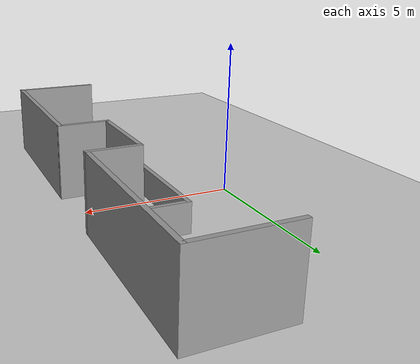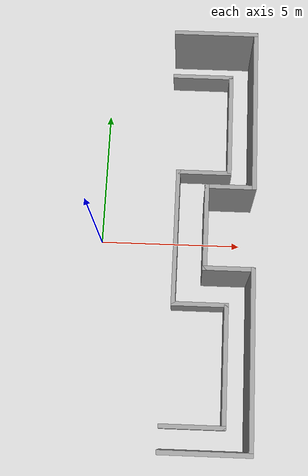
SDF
<sdf version="1.7">
 <world name="default">
  <light name="sun" type="directional">
   <pose>0 0 10 0 -0 0</pose>
   <diffuse>0.8 0.8 0.8 1</diffuse>
   <specular>0.2 0.2 0.2 1</specular>
   <attenuation>
    <range>1000</range>
    <constant>0.9</constant>
    <linear>0.01</linear>
    <quadratic>0.001</quadratic>
   </attenuation>
   <direction>-0.5 0.1 -0.9</direction>
   <spot><inner_angle>0</inner_angle><outer_angle>0</outer_angle><falloff>0</falloff></spot>
  </light>
  <model name="ground_plane">
   <static>1</static>
   <link name="link">
    <collision name="collision">
     <geometry><plane><normal>0 0 1</normal><size>100 100</size></plane></geometry>
     <surface><friction><ode><mu>100</mu><mu2>50</mu2></ode></friction></surface>
    </collision>
    <visual name="visual">
     <cast_shadows>0</cast_shadows>
     <geometry><plane><normal>0 0 1</normal><size>100 100</size></plane></geometry>
     <material>
      <script><uri>file://media/materials/scripts/gazebo.material</uri><name>Gazebo/Grey</name></script>
     </material>
    </visual>
   </link>
  </model>
  <gravity>0 0 -9.8</gravity>
  <magnetic_field>6e-06 2.3e-05 -4.2e-05</magnetic_field>
  <atmosphere type="adiabatic"/>
  <physics type="ode">
   <max_step_size>0.001</max_step_size>
   <real_time_factor>1</real_time_factor>
   <real_time_update_rate>1000</real_time_update_rate>
  </physics>
  <scene><ambient>0.4 0.4 0.4 1</ambient><background>0.7 0.7 0.7 1</background><shadows>1</shadows></scene>
  <audio><device>default</device></audio>
  <spherical_coordinates>
   <surface_model>EARTH_WGS84</surface_model>
   <latitude_deg>0</latitude_deg>
   <longitude_deg>0</longitude_deg>
   <elevation>0</elevation>
   <heading_deg>0</heading_deg>
  </spherical_coordinates>
  <model name="mbs_room">
   <link name="Wall_100">
    <pose>0 -0.735966 0 0 -0 0</pose>
    <visual name="Wall_100_Visual">
     <pose>0 0 1.25 0 -0 0</pose>
     <geometry><box><size>3 0.15 2.5</size></box></geometry>
     <material>
      <script><uri>file://media/materials/scripts/gazebo.material</uri><name>Gazebo/Grey</name></script>
      <ambient>1 1 1 1</ambient>
      <shader type="pixel"/>
     </material>
     <meta><layer>0</layer></meta>
    </visual>
    <collision name="Wall_100_Collision">
     <pose>0 0 1.25 0 -0 0</pose>
     <geometry><box><size>3 0.15 2.5</size></box></geometry>
     <surface>
      <friction>
       <ode><mu>1</mu><mu2>1</mu2><fdir1>0 0 0</fdir1><slip1>0</slip1><slip2>0</slip2></ode>
       <torsional>
        <coefficient>1</coefficient>
        <patch_radius>0</patch_radius>
        <surface_radius>0</surface_radius>
        <use_patch_radius>1</use_patch_radius>
        <ode><slip>0</slip></ode>
       </torsional>
      </friction>
      <bounce><restitution_coefficient>0</restitution_coefficient><threshold>1e+06</threshold></bounce>
      <contact>
       <collide_without_contact>0</collide_without_contact>
       <collide_without_contact_bitmask>1</collide_without_contact_bitmask>
       <collide_bitmask>1</collide_bitmask>
       <ode>
        <soft_cfm>0</soft_cfm>
        <soft_erp>0.2</soft_erp>
        <kp>1e+13</kp>
        <kd>1</kd>
        <max_vel>0.01</max_vel>
        <min_depth>0</min_depth>
       </ode>
       <bullet>
        <split_impulse>1</split_impulse>
        <split_impulse_penetration_threshold>-0.01</split_impulse_penetration_threshold>
        <soft_cfm>0</soft_cfm>
        <soft_erp>0.2</soft_erp>
        <kp>1e+13</kp>
        <kd>1</kd>
       </bullet>
      </contact>
     </surface>
    </collision>
   </link>
   <link name="Wall_101">
    <pose>1.425 -1.53597 0 0 0 -1.5708</pose>
    <visual name="Wall_101_Visual">
     <pose>0 0 1.25 0 -0 0</pose>
     <geometry><box><size>1.75 0.15 2.5</size></box></geometry>
     <material>
      <script><uri>file://media/materials/scripts/gazebo.material</uri><name>Gazebo/Grey</name></script>
      <ambient>1 1 1 1</ambient>
      <shader type="pixel"/>
     </material>
     <meta><layer>0</layer></meta>
    </visual>
    <collision name="Wall_101_Collision">
     <pose>0 0 1.25 0 -0 0</pose>
     <geometry><box><size>1.75 0.15 2.5</size></box></geometry>
     <surface>
      <friction>
       <ode><mu>1</mu><mu2>1</mu2><fdir1>0 0 0</fdir1><slip1>0</slip1><slip2>0</slip2></ode>
       <torsional>
        <coefficient>1</coefficient>
        <patch_radius>0</patch_radius>
        <surface_radius>0</surface_radius>
        <use_patch_radius>1</use_patch_radius>
        <ode><slip>0</slip></ode>
       </torsional>
      </friction>
      <bounce><restitution_coefficient>0</restitution_coefficient><threshold>1e+06</threshold></bounce>
      <contact>
       <collide_without_contact>0</collide_without_contact>
       <collide_without_contact_bitmask>1</collide_without_contact_bitmask>
       <collide_bitmask>1</collide_bitmask>
       <ode>
        <soft_cfm>0</soft_cfm>
        <soft_erp>0.2</soft_erp>
        <kp>1e+13</kp>
        <kd>1</kd>
        <max_vel>0.01</max_vel>
        <min_depth>0</min_depth>
       </ode>
       <bullet>
        <split_impulse>1</split_impulse>
        <split_impulse_penetration_threshold>-0.01</split_impulse_penetration_threshold>
        <soft_cfm>0</soft_cfm>
        <soft_erp>0.2</soft_erp>
        <kp>1e+13</kp>
        <kd>1</kd>
       </bullet>
      </contact>
     </surface>
    </collision>
   </link>
   <link name="Wall_102">
    <pose>4.35 -2.33597 0 0 -0 0</pose>
    <visual name="Wall_102_Visual">
     <pose>0 0 1.25 0 -0 0</pose>
     <geometry><box><size>6 0.15 2.5</size></box></geometry>
     <material>
      <script><uri>file://media/materials/scripts/gazebo.material</uri><name>Gazebo/Grey</name></script>
      <ambient>1 1 1 1</ambient>
      <shader type="pixel"/>
     </material>
     <meta><layer>0</layer></meta>
    </visual>
    <collision name="Wall_102_Collision">
     <pose>0 0 1.25 0 -0 0</pose>
     <geometry><box><size>6 0.15 2.5</size></box></geometry>
     <surface>
      <friction>
       <ode><mu>1</mu><mu2>1</mu2><fdir1>0 0 0</fdir1><slip1>0</slip1><slip2>0</slip2></ode>
       <torsional>
        <coefficient>1</coefficient>
        <patch_radius>0</patch_radius>
        <surface_radius>0</surface_radius>
        <use_patch_radius>1</use_patch_radius>
        <ode><slip>0</slip></ode>
       </torsional>
      </friction>
      <bounce><restitution_coefficient>0</restitution_coefficient><threshold>1e+06</threshold></bounce>
      <contact>
       <collide_without_contact>0</collide_without_contact>
       <collide_without_contact_bitmask>1</collide_without_contact_bitmask>
       <collide_bitmask>1</collide_bitmask>
       <ode>
        <soft_cfm>0</soft_cfm>
        <soft_erp>0.2</soft_erp>
        <kp>1e+13</kp>
        <kd>1</kd>
        <max_vel>0.01</max_vel>
        <min_depth>0</min_depth>
       </ode>
       <bullet>
        <split_impulse>1</split_impulse>
        <split_impulse_penetration_threshold>-0.01</split_impulse_penetration_threshold>
        <soft_cfm>0</soft_cfm>
        <soft_erp>0.2</soft_erp>
        <kp>1e+13</kp>
        <kd>1</kd>
       </bullet>
      </contact>
     </surface>
    </collision>
   </link>
   <link name="Wall_103">
    <pose>7.275 -0.910966 0 0 -0 1.5708</pose>
    <visual name="Wall_103_Visual">
     <pose>0 0 1.25 0 -0 0</pose>
     <geometry><box><size>3 0.15 2.5</size></box></geometry>
     <material>
      <script><uri>file://media/materials/scripts/gazebo.material</uri><name>Gazebo/Grey</name></script>
      <ambient>1 1 1 1</ambient>
      <shader type="pixel"/>
     </material>
     <meta><layer>0</layer></meta>
    </visual>
    <collision name="Wall_103_Collision">
     <pose>0 0 1.25 0 -0 0</pose>
     <geometry><box><size>3 0.15 2.5</size></box></geometry>
     <surface>
      <friction>
       <ode><mu>1</mu><mu2>1</mu2><fdir1>0 0 0</fdir1><slip1>0</slip1><slip2>0</slip2></ode>
       <torsional>
        <coefficient>1</coefficient>
        <patch_radius>0</patch_radius>
        <surface_radius>0</surface_radius>
        <use_patch_radius>1</use_patch_radius>
        <ode><slip>0</slip></ode>
       </torsional>
      </friction>
      <bounce><restitution_coefficient>0</restitution_coefficient><threshold>1e+06</threshold></bounce>
      <contact>
       <collide_without_contact>0</collide_without_contact>
       <collide_without_contact_bitmask>1</collide_without_contact_bitmask>
       <collide_bitmask>1</collide_bitmask>
       <ode>
        <soft_cfm>0</soft_cfm>
        <soft_erp>0.2</soft_erp>
        <kp>1e+13</kp>
        <kd>1</kd>
        <max_vel>0.01</max_vel>
        <min_depth>0</min_depth>
       </ode>
       <bullet>
        <split_impulse>1</split_impulse>
        <split_impulse_penetration_threshold>-0.01</split_impulse_penetration_threshold>
        <soft_cfm>0</soft_cfm>
        <soft_erp>0.2</soft_erp>
        <kp>1e+13</kp>
        <kd>1</kd>
       </bullet>
      </contact>
     </surface>
    </collision>
   </link>
   <link name="Wall_105">
    <pose>-6.465 -0.505966 0 0 0 -1.5708</pose>
    <inertial>
     <mass>1</mass>
     <inertia><ixx>1</ixx><ixy>0</ixy><ixz>0</ixz><iyy>1</iyy><iyz>0</iyz><izz>1</izz></inertia>
    </inertial>
    <visual name="Wall_105_Visual">
     <pose>0 0 0.5 0 -0 0</pose>
     <geometry><box><size>2.25 0.15 1</size></box></geometry>
     <material>
      <script><uri>file://media/materials/scripts/gazebo.material</uri><name>Gazebo/Grey</name></script>
      <ambient>1 1 1 1</ambient>
      <shader type="pixel"><normal_map>__default__</normal_map></shader>
      <diffuse>0.7 0.7 0.7 1</diffuse>
      <specular>0.01 0.01 0.01 1</specular>
      <emissive>0 0 0 1</emissive>
     </material>
     <meta><layer>0</layer></meta>
    </visual>
    <collision name="Wall_105_Collision">
     <pose>0 0 0.5 0 -0 0</pose>
     <geometry><box><size>2.25 0.15 1</size></box></geometry>
     <surface>
      <friction>
       <ode><mu>1</mu><mu2>1</mu2><fdir1>0 0 0</fdir1><slip1>0</slip1><slip2>0</slip2></ode>
       <torsional>
        <coefficient>1</coefficient>
        <patch_radius>0</patch_radius>
        <surface_radius>0</surface_radius>
        <use_patch_radius>1</use_patch_radius>
        <ode><slip>0</slip></ode>
       </torsional>
      </friction>
      <bounce><restitution_coefficient>0</restitution_coefficient><threshold>1e+06</threshold></bounce>
      <contact>
       <collide_without_contact>0</collide_without_contact>
       <collide_without_contact_bitmask>1</collide_without_contact_bitmask>
       <collide_bitmask>1</collide_bitmask>
       <ode>
        <soft_cfm>0</soft_cfm>
        <soft_erp>0.2</soft_erp>
        <kp>1e+13</kp>
        <kd>1</kd>
        <max_vel>0.01</max_vel>
        <min_depth>0</min_depth>
       </ode>
       <bullet>
        <split_impulse>1</split_impulse>
        <split_impulse_penetration_threshold>-0.01</split_impulse_penetration_threshold>
        <soft_cfm>0</soft_cfm>
        <soft_erp>0.2</soft_erp>
        <kp>1e+13</kp>
        <kd>1</kd>
       </bullet>
      </contact>
     </surface>
    </collision>
   </link>
   <link name="Wall_106">
    <pose>-4.415 -1.55597 0 0 -0 0</pose>
    <inertial>
     <mass>1</mass>
     <inertia><ixx>1</ixx><ixy>0</ixy><ixz>0</ixz><iyy>1</iyy><iyz>0</iyz><izz>1</izz></inertia>
    </inertial>
    <visual name="Wall_106_Visual">
     <pose>0 0 0.5 0 -0 0</pose>
     <geometry><box><size>4.25 0.15 1</size></box></geometry>
     <material>
      <script><uri>file://media/materials/scripts/gazebo.material</uri><name>Gazebo/Grey</name></script>
      <ambient>1 1 1 1</ambient>
      <shader type="pixel"><normal_map>__default__</normal_map></shader>
      <diffuse>0.7 0.7 0.7 1</diffuse>
      <specular>0.01 0.01 0.01 1</specular>
      <emissive>0 0 0 1</emissive>
     </material>
     <meta><layer>0</layer></meta>
    </visual>
    <collision name="Wall_106_Collision">
     <pose>0 0 0.5 0 -0 0</pose>
     <geometry><box><size>4.25 0.15 1</size></box></geometry>
     <surface>
      <friction>
       <ode><mu>1</mu><mu2>1</mu2><fdir1>0 0 0</fdir1><slip1>0</slip1><slip2>0</slip2></ode>
       <torsional>
        <coefficient>1</coefficient>
        <patch_radius>0</patch_radius>
        <surface_radius>0</surface_radius>
        <use_patch_radius>1</use_patch_radius>
        <ode><slip>0</slip></ode>
       </torsional>
      </friction>
      <bounce><restitution_coefficient>0</restitution_coefficient><threshold>1e+06</threshold></bounce>
      <contact>
       <collide_without_contact>0</collide_without_contact>
       <collide_without_contact_bitmask>1</collide_without_contact_bitmask>
       <collide_bitmask>1</collide_bitmask>
       <ode>
        <soft_cfm>0</soft_cfm>
        <soft_erp>0.2</soft_erp>
        <kp>1e+13</kp>
        <kd>1</kd>
        <max_vel>0.01</max_vel>
        <min_depth>0</min_depth>
       </ode>
       <bullet>
        <split_impulse>1</split_impulse>
        <split_impulse_penetration_threshold>-0.01</split_impulse_penetration_threshold>
        <soft_cfm>0</soft_cfm>
        <soft_erp>0.2</soft_erp>
        <kp>1e+13</kp>
        <kd>1</kd>
       </bullet>
      </contact>
     </surface>
    </collision>
   </link>
   <link name="Wall_107">
    <pose>-2.365 -0.630966 0 0 -0 1.5708</pose>
    <inertial>
     <mass>1</mass>
     <inertia><ixx>1</ixx><ixy>0</ixy><ixz>0</ixz><iyy>1</iyy><iyz>0</iyz><izz>1</izz></inertia>
    </inertial>
    <visual name="Wall_107_Visual">
     <pose>0 0 0.5 0 -0 0</pose>
     <geometry><box><size>2 0.15 1</size></box></geometry>
     <material>
      <script><uri>file://media/materials/scripts/gazebo.material</uri><name>Gazebo/Grey</name></script>
      <ambient>1 1 1 1</ambient>
      <shader type="pixel"><normal_map>__default__</normal_map></shader>
      <diffuse>0.7 0.7 0.7 1</diffuse>
      <specular>0.01 0.01 0.01 1</specular>
      <emissive>0 0 0 1</emissive>
     </material>
     <meta><layer>0</layer></meta>
    </visual>
    <collision name="Wall_107_Collision">
     <pose>0 0 0.5 0 -0 0</pose>
     <geometry><box><size>2 0.15 1</size></box></geometry>
     <surface>
      <friction>
       <ode><mu>1</mu><mu2>1</mu2><fdir1>0 0 0</fdir1><slip1>0</slip1><slip2>0</slip2></ode>
       <torsional>
        <coefficient>1</coefficient>
        <patch_radius>0</patch_radius>
        <surface_radius>0</surface_radius>
        <use_patch_radius>1</use_patch_radius>
        <ode><slip>0</slip></ode>
       </torsional>
      </friction>
      <bounce><restitution_coefficient>0</restitution_coefficient><threshold>1e+06</threshold></bounce>
      <contact>
       <collide_without_contact>0</collide_without_contact>
       <collide_without_contact_bitmask>1</collide_without_contact_bitmask>
       <collide_bitmask>1</collide_bitmask>
       <ode>
        <soft_cfm>0</soft_cfm>
        <soft_erp>0.2</soft_erp>
        <kp>1e+13</kp>
        <kd>1</kd>
        <max_vel>0.01</max_vel>
        <min_depth>0</min_depth>
       </ode>
       <bullet>
        <split_impulse>1</split_impulse>
        <split_impulse_penetration_threshold>-0.01</split_impulse_penetration_threshold>
        <soft_cfm>0</soft_cfm>
        <soft_erp>0.2</soft_erp>
        <kp>1e+13</kp>
        <kd>1</kd>
       </bullet>
      </contact>
     </surface>
    </collision>
   </link>
   <link name="Wall_108">
    <pose>0.06 0.294034 0 0 -0 0</pose>
    <inertial>
     <mass>1</mass>
     <inertia><ixx>1</ixx><ixy>0</ixy><ixz>0</ixz><iyy>1</iyy><iyz>0</iyz><izz>1</izz></inertia>
    </inertial>
    <visual name="Wall_108_Visual">
     <pose>0 0 0.5 0 -0 0</pose>
     <geometry><box><size>5 0.15 1</size></box></geometry>
     <material>
      <script><uri>file://media/materials/scripts/gazebo.material</uri><name>Gazebo/Grey</name></script>
      <ambient>1 1 1 1</ambient>
      <shader type="pixel"><normal_map>__default__</normal_map></shader>
      <diffuse>0.7 0.7 0.7 1</diffuse>
      <specular>0.01 0.01 0.01 1</specular>
      <emissive>0 0 0 1</emissive>
     </material>
     <meta><layer>0</layer></meta>
    </visual>
    <collision name="Wall_108_Collision">
     <pose>0 0 0.5 0 -0 0</pose>
     <geometry><box><size>5 0.15 1</size></box></geometry>
     <surface>
      <friction>
       <ode><mu>1</mu><mu2>1</mu2><fdir1>0 0 0</fdir1><slip1>0</slip1><slip2>0</slip2></ode>
       <torsional>
        <coefficient>1</coefficient>
        <patch_radius>0</patch_radius>
        <surface_radius>0</surface_radius>
        <use_patch_radius>1</use_patch_radius>
        <ode><slip>0</slip></ode>
       </torsional>
      </friction>
      <bounce><restitution_coefficient>0</restitution_coefficient><threshold>1e+06</threshold></bounce>
      <contact>
       <collide_without_contact>0</collide_without_contact>
       <collide_without_contact_bitmask>1</collide_without_contact_bitmask>
       <collide_bitmask>1</collide_bitmask>
       <ode>
        <soft_cfm>0</soft_cfm>
        <soft_erp>0.2</soft_erp>
        <kp>1e+13</kp>
        <kd>1</kd>
        <max_vel>0.01</max_vel>
        <min_depth>0</min_depth>
       </ode>
       <bullet>
        <split_impulse>1</split_impulse>
        <split_impulse_penetration_threshold>-0.01</split_impulse_penetration_threshold>
        <soft_cfm>0</soft_cfm>
        <soft_erp>0.2</soft_erp>
        <kp>1e+13</kp>
        <kd>1</kd>
       </bullet>
      </contact>
     </surface>
    </collision>
   </link>
   <link name="Wall_109">
    <pose>2.485 -0.630966 0 0 0 -1.5708</pose>
    <inertial>
     <mass>1</mass>
     <inertia><ixx>1</ixx><ixy>0</ixy><ixz>0</ixz><iyy>1</iyy><iyz>0</iyz><izz>1</izz></inertia>
    </inertial>
    <visual name="Wall_109_Visual">
     <pose>0 0 0.5 0 -0 0</pose>
     <geometry><box><size>2 0.15 1</size></box></geometry>
     <material>
      <script><uri>file://media/materials/scripts/gazebo.material</uri><name>Gazebo/Grey</name></script>
      <ambient>1 1 1 1</ambient>
      <shader type="pixel"><normal_map>__default__</normal_map></shader>
      <diffuse>0.7 0.7 0.7 1</diffuse>
      <specular>0.01 0.01 0.01 1</specular>
      <emissive>0 0 0 1</emissive>
     </material>
     <meta><layer>0</layer></meta>
    </visual>
    <collision name="Wall_109_Collision">
     <pose>0 0 0.5 0 -0 0</pose>
     <geometry><box><size>2 0.15 1</size></box></geometry>
     <surface>
      <friction>
       <ode><mu>1</mu><mu2>1</mu2><fdir1>0 0 0</fdir1><slip1>0</slip1><slip2>0</slip2></ode>
       <torsional>
        <coefficient>1</coefficient>
        <patch_radius>0</patch_radius>
        <surface_radius>0</surface_radius>
        <use_patch_radius>1</use_patch_radius>
        <ode><slip>0</slip></ode>
       </torsional>
      </friction>
      <bounce><restitution_coefficient>0</restitution_coefficient><threshold>1e+06</threshold></bounce>
      <contact>
       <collide_without_contact>0</collide_without_contact>
       <collide_without_contact_bitmask>1</collide_without_contact_bitmask>
       <collide_bitmask>1</collide_bitmask>
       <ode>
        <soft_cfm>0</soft_cfm>
        <soft_erp>0.2</soft_erp>
        <kp>1e+13</kp>
        <kd>1</kd>
        <max_vel>0.01</max_vel>
        <min_depth>0</min_depth>
       </ode>
       <bullet>
        <split_impulse>1</split_impulse>
        <split_impulse_penetration_threshold>-0.01</split_impulse_penetration_threshold>
        <soft_cfm>0</soft_cfm>
        <soft_erp>0.2</soft_erp>
        <kp>1e+13</kp>
        <kd>1</kd>
       </bullet>
      </contact>
     </surface>
    </collision>
   </link>
   <link name="Wall_110">
    <pose>4.41 -1.55597 0 0 -0 0</pose>
    <inertial>
     <mass>1</mass>
     <inertia><ixx>1</ixx><ixy>0</ixy><ixz>0</ixz><iyy>1</iyy><iyz>0</iyz><izz>1</izz></inertia>
    </inertial>
    <visual name="Wall_110_Visual">
     <pose>0 0 0.5 0 -0 0</pose>
     <geometry><box><size>4 0.15 1</size></box></geometry>
     <material>
      <script><uri>file://media/materials/scripts/gazebo.material</uri><name>Gazebo/Grey</name></script>
      <ambient>1 1 1 1</ambient>
      <shader type="pixel"><normal_map>__default__</normal_map></shader>
      <diffuse>0.7 0.7 0.7 1</diffuse>
      <specular>0.01 0.01 0.01 1</specular>
      <emissive>0 0 0 1</emissive>
     </material>
     <meta><layer>0</layer></meta>
    </visual>
    <collision name="Wall_110_Collision">
     <pose>0 0 0.5 0 -0 0</pose>
     <geometry><box><size>4 0.15 1</size></box></geometry>
     <surface>
      <friction>
       <ode><mu>1</mu><mu2>1</mu2><fdir1>0 0 0</fdir1><slip1>0</slip1><slip2>0</slip2></ode>
       <torsional>
        <coefficient>1</coefficient>
        <patch_radius>0</patch_radius>
        <surface_radius>0</surface_radius>
        <use_patch_radius>1</use_patch_radius>
        <ode><slip>0</slip></ode>
       </torsional>
      </friction>
      <bounce><restitution_coefficient>0</restitution_coefficient><threshold>1e+06</threshold></bounce>
      <contact>
       <collide_without_contact>0</collide_without_contact>
       <collide_without_contact_bitmask>1</collide_without_contact_bitmask>
       <collide_bitmask>1</collide_bitmask>
       <ode>
        <soft_cfm>0</soft_cfm>
        <soft_erp>0.2</soft_erp>
        <kp>1e+13</kp>
        <kd>1</kd>
        <max_vel>0.01</max_vel>
        <min_depth>0</min_depth>
       </ode>
       <bullet>
        <split_impulse>1</split_impulse>
        <split_impulse_penetration_threshold>-0.01</split_impulse_penetration_threshold>
        <soft_cfm>0</soft_cfm>
        <soft_erp>0.2</soft_erp>
        <kp>1e+13</kp>
        <kd>1</kd>
       </bullet>
      </contact>
     </surface>
    </collision>
   </link>
   <link name="Wall_111">
    <pose>6.335 -0.505966 0 0 -0 1.5708</pose>
    <inertial>
     <mass>1</mass>
     <inertia><ixx>1</ixx><ixy>0</ixy><ixz>0</ixz><iyy>1</iyy><iyz>0</iyz><izz>1</izz></inertia>
    </inertial>
    <visual name="Wall_111_Visual">
     <pose>0 0 0.5 0 -0 0</pose>
     <geometry><box><size>2.25 0.15 1</size></box></geometry>
     <material>
      <script><uri>file://media/materials/scripts/gazebo.material</uri><name>Gazebo/Grey</name></script>
      <ambient>1 1 1 1</ambient>
      <shader type="pixel"><normal_map>__default__</normal_map></shader>
      <diffuse>0.7 0.7 0.7 1</diffuse>
      <specular>0.01 0.01 0.01 1</specular>
      <emissive>0 0 0 1</emissive>
     </material>
     <meta><layer>0</layer></meta>
    </visual>
    <collision name="Wall_111_Collision">
     <pose>0 0 0.49 0 -0 0</pose>
     <geometry><box><size>2.25 0.15 1</size></box></geometry>
     <surface>
      <friction>
       <ode><mu>1</mu><mu2>1</mu2><fdir1>0 0 0</fdir1><slip1>0</slip1><slip2>0</slip2></ode>
       <torsional>
        <coefficient>1</coefficient>
        <patch_radius>0</patch_radius>
        <surface_radius>0</surface_radius>
        <use_patch_radius>1</use_patch_radius>
        <ode><slip>0</slip></ode>
       </torsional>
      </friction>
      <bounce><restitution_coefficient>0</restitution_coefficient><threshold>1e+06</threshold></bounce>
      <contact>
       <collide_without_contact>0</collide_without_contact>
       <collide_without_contact_bitmask>1</collide_without_contact_bitmask>
       <collide_bitmask>1</collide_bitmask>
       <ode>
        <soft_cfm>0</soft_cfm>
        <soft_erp>0.2</soft_erp>
        <kp>1e+13</kp>
        <kd>1</kd>
        <max_vel>0.01</max_vel>
        <min_depth>0</min_depth>
       </ode>
       <bullet>
        <split_impulse>1</split_impulse>
        <split_impulse_penetration_threshold>-0.01</split_impulse_penetration_threshold>
        <soft_cfm>0</soft_cfm>
        <soft_erp>0.2</soft_erp>
        <kp>1e+13</kp>
        <kd>1</kd>
       </bullet>
      </contact>
     </surface>
    </collision>
   </link>
   <link name="Wall_95">
    <pose>-7.275 -0.910966 0 0 0 -1.5708</pose>
    <visual name="Wall_95_Visual">
     <pose>0 0 1.25 0 -0 0</pose>
     <geometry><box><size>3 0.15 2.5</size></box></geometry>
     <material>
      <script><uri>file://media/materials/scripts/gazebo.material</uri><name>Gazebo/Grey</name></script>
      <ambient>1 1 1 1</ambient>
      <shader type="pixel"/>
     </material>
     <meta><layer>0</layer></meta>
    </visual>
    <collision name="Wall_95_Collision">
     <pose>0 0 1.25 0 -0 0</pose>
     <geometry><box><size>3 0.15 2.5</size></box></geometry>
     <surface>
      <friction>
       <ode><mu>1</mu><mu2>1</mu2><fdir1>0 0 0</fdir1><slip1>0</slip1><slip2>0</slip2></ode>
       <torsional>
        <coefficient>1</coefficient>
        <patch_radius>0</patch_radius>
        <surface_radius>0</surface_radius>
        <use_patch_radius>1</use_patch_radius>
        <ode><slip>0</slip></ode>
       </torsional>
      </friction>
      <bounce><restitution_coefficient>0</restitution_coefficient><threshold>1e+06</threshold></bounce>
      <contact>
       <collide_without_contact>0</collide_without_contact>
       <collide_without_contact_bitmask>1</collide_without_contact_bitmask>
       <collide_bitmask>1</collide_bitmask>
       <ode>
        <soft_cfm>0</soft_cfm>
        <soft_erp>0.2</soft_erp>
        <kp>1e+13</kp>
        <kd>1</kd>
        <max_vel>0.01</max_vel>
        <min_depth>0</min_depth>
       </ode>
       <bullet>
        <split_impulse>1</split_impulse>
        <split_impulse_penetration_threshold>-0.01</split_impulse_penetration_threshold>
        <soft_cfm>0</soft_cfm>
        <soft_erp>0.2</soft_erp>
        <kp>1e+13</kp>
        <kd>1</kd>
       </bullet>
      </contact>
     </surface>
    </collision>
   </link>
   <link name="Wall_96">
    <pose>-4.35 -2.33597 0 0 -0 0</pose>
    <visual name="Wall_96_Visual">
     <pose>0 0 1.25 0 -0 0</pose>
     <geometry><box><size>6 0.15 2.5</size></box></geometry>
     <material>
      <script><uri>file://media/materials/scripts/gazebo.material</uri><name>Gazebo/Grey</name></script>
      <ambient>1 1 1 1</ambient>
      <shader type="pixel"/>
     </material>
     <meta><layer>0</layer></meta>
    </visual>
    <collision name="Wall_96_Collision">
     <pose>0 0 1.25 0 -0 0</pose>
     <geometry><box><size>6 0.15 2.5</size></box></geometry>
     <surface>
      <friction>
       <ode><mu>1</mu><mu2>1</mu2><fdir1>0 0 0</fdir1><slip1>0</slip1><slip2>0</slip2></ode>
       <torsional>
        <coefficient>1</coefficient>
        <patch_radius>0</patch_radius>
        <surface_radius>0</surface_radius>
        <use_patch_radius>1</use_patch_radius>
        <ode><slip>0</slip></ode>
       </torsional>
      </friction>
      <bounce><restitution_coefficient>0</restitution_coefficient><threshold>1e+06</threshold></bounce>
      <contact>
       <collide_without_contact>0</collide_without_contact>
       <collide_without_contact_bitmask>1</collide_without_contact_bitmask>
       <collide_bitmask>1</collide_bitmask>
       <ode>
        <soft_cfm>0</soft_cfm>
        <soft_erp>0.2</soft_erp>
        <kp>1e+13</kp>
        <kd>1</kd>
        <max_vel>0.01</max_vel>
        <min_depth>0</min_depth>
       </ode>
       <bullet>
        <split_impulse>1</split_impulse>
        <split_impulse_penetration_threshold>-0.01</split_impulse_penetration_threshold>
        <soft_cfm>0</soft_cfm>
        <soft_erp>0.2</soft_erp>
        <kp>1e+13</kp>
        <kd>1</kd>
       </bullet>
      </contact>
     </surface>
    </collision>
   </link>
   <link name="Wall_97">
    <pose>-1.425 -1.53597 0 0 -0 1.5708</pose>
    <visual name="Wall_97_Visual">
     <pose>0 0 1.25 0 -0 0</pose>
     <geometry><box><size>1.75 0.15 2.5</size></box></geometry>
     <material>
      <script><uri>file://media/materials/scripts/gazebo.material</uri><name>Gazebo/Grey</name></script>
      <ambient>1 1 1 1</ambient>
      <shader type="pixel"/>
     </material>
     <meta><layer>0</layer></meta>
    </visual>
    <collision name="Wall_97_Collision">
     <pose>0 0 1.25 0 -0 0</pose>
     <geometry><box><size>1.75 0.15 2.5</size></box></geometry>
     <surface>
      <friction>
       <ode><mu>1</mu><mu2>1</mu2><fdir1>0 0 0</fdir1><slip1>0</slip1><slip2>0</slip2></ode>
       <torsional>
        <coefficient>1</coefficient>
        <patch_radius>0</patch_radius>
        <surface_radius>0</surface_radius>
        <use_patch_radius>1</use_patch_radius>
        <ode><slip>0</slip></ode>
       </torsional>
      </friction>
      <bounce><restitution_coefficient>0</restitution_coefficient><threshold>1e+06</threshold></bounce>
      <contact>
       <collide_without_contact>0</collide_without_contact>
       <collide_without_contact_bitmask>1</collide_without_contact_bitmask>
       <collide_bitmask>1</collide_bitmask>
       <ode>
        <soft_cfm>0</soft_cfm>
        <soft_erp>0.2</soft_erp>
        <kp>1e+13</kp>
        <kd>1</kd>
        <max_vel>0.01</max_vel>
        <min_depth>0</min_depth>
       </ode>
       <bullet>
        <split_impulse>1</split_impulse>
        <split_impulse_penetration_threshold>-0.01</split_impulse_penetration_threshold>
        <soft_cfm>0</soft_cfm>
        <soft_erp>0.2</soft_erp>
        <kp>1e+13</kp>
        <kd>1</kd>
       </bullet>
      </contact>
     </surface>
    </collision>
   </link>
   <static>1</static>
   <pose>2.99216 0.009396 0 0 -0 1.5708</pose>
  </model>
 </world>
</sdf>
